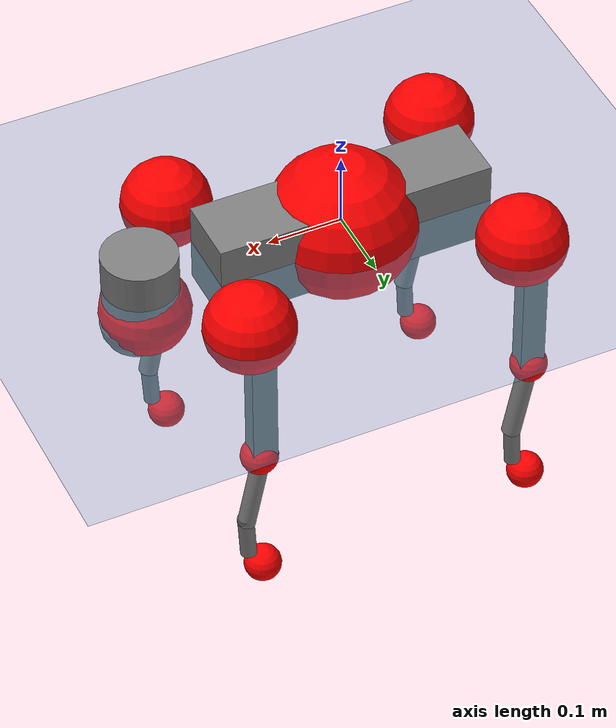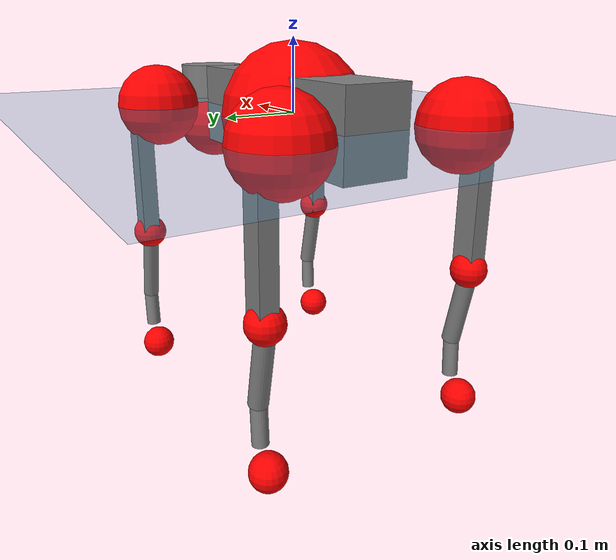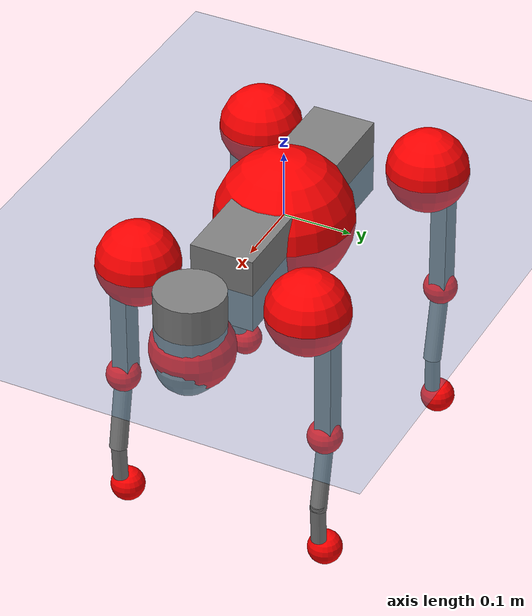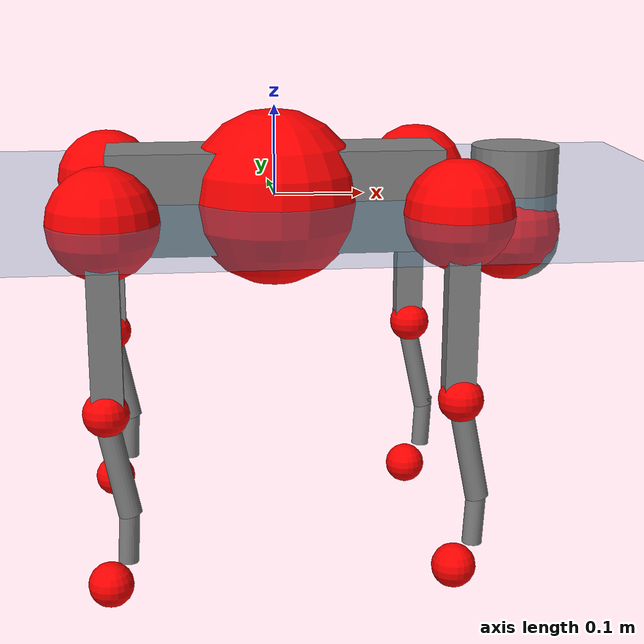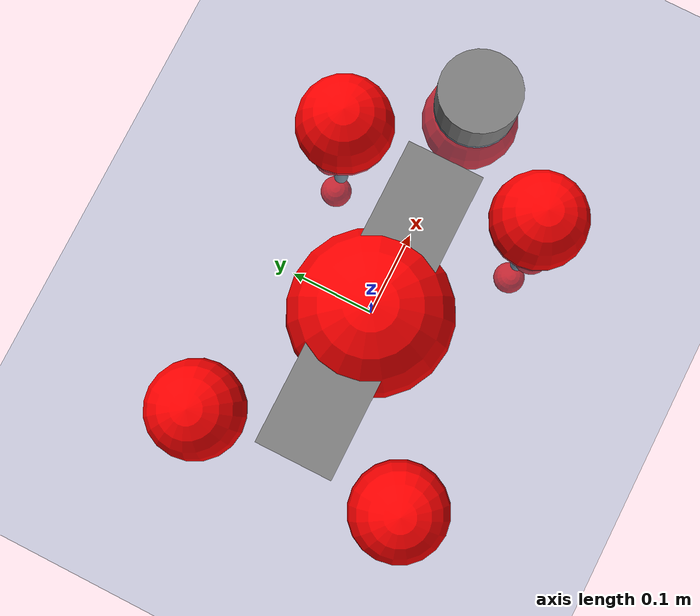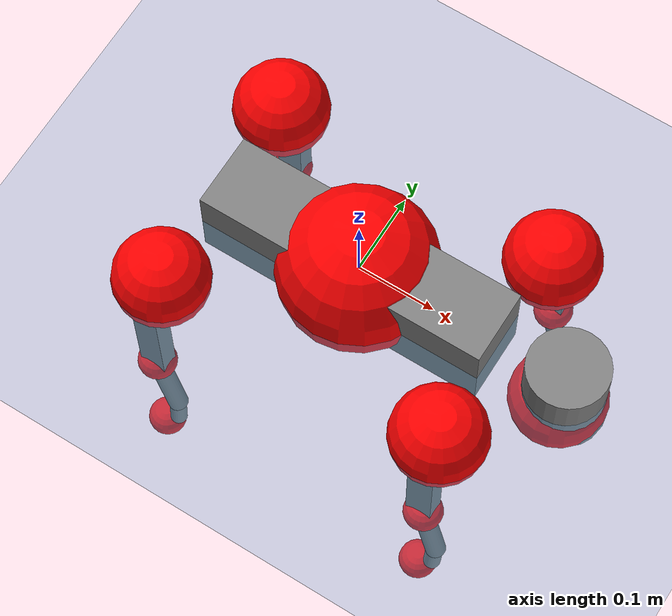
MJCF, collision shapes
<mujoco model="go2">
  <compiler angle="radian" assetdir="assets" balanceinertia="true" inertiafromgeom="false"/>

  <option timestep="0.005" density="1.2" viscosity="2e-05"/>

  <size nkey="1"/>

  <visual>
    <quality shadowsize="8192"/>
    <map shadowclip="0.5"/>
  </visual>

  <default>
    <default class="/">
      <geom contype="0" conaffinity="0" group="1" solref="-1000 -80"/>
      <site size="0.01 0.005 0.005" group="5"/>
      <general forcelimited="true" biastype="affine" gainprm="20" biasprm="0 -20 -0.5"/>
      <default class="go2">
        <joint armature="0.01" damping="0.01" frictionloss="0.2"/>
        <geom condim="1" margin="0.001"/>
        <default class="visual">
          <geom type="mesh" group="2"/>
        </default>
        <default class="collision">
          <geom group="3"/>
          <default class="foot">
            <geom size="0.022 0 0" condim="6" priority="1" friction="0.8 0.02 0.01" solimp="0.015 1 0.022"/>
          </default>
        </default>
        <default class="reward_collision_sphere">
          <geom group="5" rgba="1 0 0 1"/>
        </default>
      </default>
    </default>
  </default>

  <asset>
    <texture type="skybox" colorspace="auto" name="//unnamed_texture_0" builtin="gradient" rgb1="0.95 0.95 0.95" rgb2="0.95 0.95 0.95" width="100" height="600"/>
    <texture type="2d" colorspace="auto" name="texplane" builtin="checker" rgb1="0.345 0.575 0.748" rgb2="0.345 0.575 0.748" markrgb="1 1 1" width="512" height="512"/>
    <material name="MatPlane" class="/" texture="texplane" texuniform="true" texrepeat="2 2" specular="0.9"/>
    <material name="metal" class="/" rgba="0.9 0.95 0.95 1"/>
    <material name="black" class="/" rgba="0 0 0 1"/>
    <material name="white" class="/"/>
    <material name="gray" class="/" rgba="0.671705 0.692426 0.77427 1"/>
    <mesh name="base_0" class="/" file="base_0.obj"/>
    <mesh name="base_1" class="/" file="base_1.obj"/>
    <mesh name="base_2" class="/" file="base_2.obj"/>
    <mesh name="base_3" class="/" file="base_3.obj"/>
    <mesh name="base_4" class="/" file="base_4.obj"/>
    <mesh name="hip_0" class="/" file="hip_0.obj"/>
    <mesh name="hip_1" class="/" file="hip_1.obj"/>
    <mesh name="thigh_0" class="/" file="thigh_0.obj"/>
    <mesh name="thigh_1" class="/" file="thigh_1.obj"/>
    <mesh name="thigh_mirror_0" class="/" file="thigh_mirror_0.obj"/>
    <mesh name="thigh_mirror_1" class="/" file="thigh_mirror_1.obj"/>
    <mesh name="calf_0" class="/" file="calf_0.obj"/>
    <mesh name="calf_1" class="/" file="calf_1.obj"/>
    <mesh name="calf_mirror_0" class="/" file="calf_mirror_0.obj"/>
    <mesh name="calf_mirror_1" class="/" file="calf_mirror_1.obj"/>
    <mesh name="foot" class="/" file="foot.obj"/>
  </asset>

  <worldbody>
    <geom name="floor" class="/" size="100 100 0.125" type="plane" group="0" material="MatPlane"/>
    <light name="toplight_shadow" class="/" pos="0 0 5" dir="0.0990148 0.0990148 -0.990148" type="directional" ambient="0.04 0.04 0.04" diffuse="0.55 0.55 0.55" specular="0.12 0.12 0.12"/>
    <light name="toplight_fill" class="/" pos="0 0 5" dir="0.0990148 0.0990148 -0.990148" type="directional" castshadow="false" ambient="0.04 0.04 0.04" diffuse="0.3 0.3 0.3" specular="0.08 0.08 0.08"/>
    <body name="trunk" childclass="go2" pos="-0.000549674 0.000285253 -0.00243264" quat="1 2.38259e-06 0.000244282 0.000323194">
      <inertial pos="0.0174256 -0.00295594 -0.00411153" quat="-0.00021961 0.713383 -0.00169564 0.700772" mass="6.69992" diaginertia="0.0925233 0.154069 0.0162981"/>
      <joint name="//unnamed_joint_0" type="free" armature="0" damping="0" frictionloss="0"/>
      <geom name="//unnamed_geom_1" class="visual" material="black" mesh="base_0"/>
      <geom name="//unnamed_geom_2" class="visual" material="black" mesh="base_1"/>
      <geom name="//unnamed_geom_3" class="visual" material="black" mesh="base_2"/>
      <geom name="//unnamed_geom_4" class="visual" material="white" mesh="base_3"/>
      <geom name="//unnamed_geom_5" class="visual" material="gray" mesh="base_4"/>
      <geom name="trunk_1" class="collision" size="0.18577 0.0461709 0.0562939" type="box"/>
      <geom name="trunk_2" class="collision" size="0.0493806 0.0444425" pos="0.274266 0 0.00913988" type="cylinder"/>
      <geom name="trunk_3" class="collision" size="0.0464178" pos="0.281965 0 -0.0548393"/>
      <geom name="//unnamed_geom_9" class="reward_collision_sphere" size="0.0987612"/>
      <geom name="//unnamed_geom_10" class="reward_collision_sphere" size="0.0592567" pos="0.269454 0 -0.0411295"/>
      <site name="imu" pos="-0.0367824 0.0050403 0.0525722" size="0.00987612"/>
      <camera name="track" pos="0 -2.17302 0" quat="0.707107 0.707107 0 0" mode="trackcom"/>
      <camera name="ego_camera" pos="0.300249 0 0.0411295" quat="-0.5 -0.5 0.5 0.5"/>
      <body name="FL_hip" pos="0.184307 0.0508897 0.0019434" quat="1 -4.34179e-06 -0.00045952 0.000158617">
        <inertial pos="-0.00242012 0.00123841 0.000167942" quat="0.491135 0.505128 0.501872 0.501754" mass="0.62819" diaginertia="0.000702229 0.000893729 0.000304394"/>
        <joint name="FL_hip_joint" pos="0 0 0" axis="0.999896 -0.00490744 -0.013564" stiffness="0.00667251" range="-1.04001 1.08408" armature="0.0111632" damping="0.00556233" frictionloss="0.208179"/>
        <geom name="//unnamed_geom_11" class="visual" material="metal" mesh="hip_0"/>
        <geom name="//unnamed_geom_12" class="visual" material="gray" mesh="hip_1"/>
        <geom name="//unnamed_geom_13" class="collision" size="0.0454302 0.0197522" pos="0 0.0869209 0" quat="0.707107 0.707107 0 0" type="cylinder"/>
        <geom name="//unnamed_geom_14" class="reward_collision_sphere" size="0.0592567" pos="0 0.0760558 0"/>
        <body name="FL_thigh" pos="-0.000187354 0.105551 0.00128311" quat="1 0.000837484 0.000347117 0.000180243">
          <inertial pos="-0.00298969 -0.0238949 -0.0270819" quat="0.829472 0.0837072 -0.0225458 0.55178" mass="1.1357" diaginertia="0.00473298 0.00882459 0.000566885"/>
          <joint name="FL_thigh_joint" pos="0 0 0" axis="-0.000663419 0.999998 0.00187429" range="-1.55503 3.47349" armature="0.00938096" damping="0.0108651" frictionloss="0.170119"/>
          <geom name="//unnamed_geom_15" class="visual" material="metal" mesh="thigh_0"/>
          <geom name="//unnamed_geom_16" class="visual" material="gray" mesh="thigh_1"/>
          <geom name="//unnamed_geom_17" class="collision" size="0.105181 0.0120982 0.0167894" pos="0 0 -0.0973397" quat="0.707107 0 0.707107 0" type="box"/>
          <body name="FL_calf" pos="0.00246205 -0.00253244 -0.197501" quat="0.999999 1.141e-05 -0.00012867 0.00144576">
            <inertial pos="0.00689461 -0.000698539 -0.128102" quat="0.712698 0.000226385 -0.00585036 0.701447" mass="0.226915" diaginertia="0.00120225 0.00220325 3.35916e-05"/>
            <joint name="FL_calf_joint" pos="0 0 0" axis="-0.0069819 0.999969 -0.00371376" stiffness="0.00141567" range="-2.77083 -0.82744" armature="0.0105879" damping="0" frictionloss="0.218962"/>
            <geom name="//unnamed_geom_18" class="visual" material="gray" mesh="calf_0"/>
            <geom name="//unnamed_geom_19" class="visual" material="black" mesh="calf_1"/>
            <geom name="FL_calf0" class="collision" size="0.0118513 0.0592567" pos="0.0076987 0 -0.0548393" quat="0.994493 0 -0.104807 0" type="cylinder"/>
            <geom name="//unnamed_geom_21" class="collision" size="0.0108637 0.0320974" pos="0.0192467 0 -0.13527" quat="0.999688 0 0.0249974 0" type="cylinder"/>
            <geom name="//unnamed_geom_22" class="visual" pos="0 0 -0.194679" quat="1 0 0 0" material="black" mesh="foot"/>
            <geom name="FL_foot" class="foot" size="0.017018" pos="-0.00192467 0 -0.194679"/>
            <geom name="//unnamed_geom_24" class="reward_collision_sphere" size="0.0246903"/>
            <geom name="//unnamed_geom_25" class="reward_collision_sphere" size="0.0246903" pos="-0.00192467 0 -0.194679"/>
            <site name="FL_foot" class="foot" pos="-0.00192467 0 -0.194679" size="0.00987612"/>
          </body>
        </body>
      </body>
      <body name="FR_hip" pos="0.184516 -0.0501052 0.000858151" quat="1 -3.37665e-05 1.89339e-05 4.47642e-06">
        <inertial pos="-0.00229137 -0.00139633 -0.00074838" quat="0.497364 0.507343 0.499557 0.495656" mass="0.676498" diaginertia="0.000740424 0.000946804 0.000314627"/>
        <joint name="FR_hip_joint" pos="0 0 0" axis="0.999999 -0.00149386 0.000630487" stiffness="0.00488525" range="-1.10522 1.02997" armature="0.00853162" damping="0.012733" frictionloss="0.170212"/>
        <geom name="//unnamed_geom_26" class="visual" pos="0 1.50295e-09 6.44645e-08" quat="4.63268e-05 1 0 0" material="metal" mesh="hip_0"/>
        <geom name="//unnamed_geom_27" class="visual" pos="0 2.43646e-09 -1.59445e-07" quat="4.63268e-05 1 0 0" material="gray" mesh="hip_1"/>
        <geom name="//unnamed_geom_28" class="collision" size="0.0454302 0.0197522" pos="0 -0.0869209 0" quat="0.707107 0.707107 0 0" type="cylinder"/>
        <geom name="//unnamed_geom_29" class="reward_collision_sphere" size="0.0592567" pos="0 -0.0760558 0"/>
        <body name="FR_thigh" pos="-0.000545474 -0.100841 -0.00149525" quat="1 0.000277832 0.000265066 -0.000248597">
          <inertial pos="-0.00383988 0.0233735 -0.0291763" quat="0.55661 -0.0138748 0.0953295 0.82517" mass="1.03711" diaginertia="0.00471202 0.00878216 0.000549318"/>
          <joint name="FR_thigh_joint" pos="0 0 0" axis="-0.00916705 -0.999928 -0.00773164" range="-3.44155 1.61574" armature="0.00990285" damping="0" frictionloss="0.21849"/>
          <geom name="//unnamed_geom_30" class="visual" material="metal" mesh="thigh_mirror_0"/>
          <geom name="//unnamed_geom_31" class="visual" material="gray" mesh="thigh_mirror_1"/>
          <geom name="//unnamed_geom_32" class="collision" size="0.105181 0.0120982 0.0167894" pos="0 0 -0.0973397" quat="0.707107 0 0.707107 0" type="box"/>
          <body name="FR_calf" pos="0.00252664 -0.00260446 -0.193968" quat="1 -3.69881e-07 1.66527e-07 -2.48902e-07">
            <inertial pos="0.00595846 0.000602143 -0.12667" quat="0.702666 -0.0114543 0.00759804 0.711387" mass="0.23569" diaginertia="0.0011919 0.00214157 3.39231e-05"/>
            <joint name="FR_calf_joint" pos="0 0 0" axis="0.00688152 -0.999976 0.000884995" range="0.798388 2.76773" armature="0.0099765" damping="0.0043922" frictionloss="0.172141"/>
            <geom name="//unnamed_geom_33" class="visual" material="gray" mesh="calf_mirror_0"/>
            <geom name="//unnamed_geom_34" class="visual" material="black" mesh="calf_mirror_1"/>
            <geom name="FR_calf0" class="collision" size="0.012839 0.0592567" pos="0.00962337 0 -0.0548393" quat="0.995004 0 -0.0998334 0" type="cylinder"/>
            <geom name="//unnamed_geom_36" class="collision" size="0.0108637 0.0320974" pos="0.0192467 0 -0.13527" quat="0.999688 0 0.0249974 0" type="cylinder"/>
            <geom name="//unnamed_geom_37" class="visual" pos="0 0 -0.194679" quat="1 0 0 0" material="black" mesh="foot"/>
            <geom name="FR_foot" class="foot" size="0.0209073" pos="-0.00192467 0 -0.194679"/>
            <geom name="//unnamed_geom_39" class="reward_collision_sphere" size="0.0246903"/>
            <geom name="//unnamed_geom_40" class="reward_collision_sphere" size="0.0246903" pos="-0.00192467 0 -0.194679"/>
            <site name="FR_foot" class="foot" pos="-0.00192467 0 -0.194679" size="0.00987612"/>
          </body>
        </body>
      </body>
      <body name="RL_hip" pos="-0.188535 0.0519477 0.000485458" quat="1 -9.41587e-05 -0.000115576 -0.000108587">
        <inertial pos="0.00604159 0.00516265 -0.000355419" quat="0.512465 0.494616 0.499367 0.493323" mass="0.651025" diaginertia="0.000703739 0.000898849 0.000285225"/>
        <joint name="RL_hip_joint" pos="0 0 0" axis="-0.999982 -0.00589966 -0.00141626" stiffness="0.000374382" range="-1.0437 1.00374" armature="0.00837566" damping="0" frictionloss="0.194612"/>
        <geom name="//unnamed_geom_41" class="visual" pos="-4.21196e-10 0 -8.25641e-08" quat="4.63268e-05 0 1 0" material="metal" mesh="hip_0"/>
        <geom name="//unnamed_geom_42" class="visual" pos="-6.82809e-10 0 -7.32226e-08" quat="4.63268e-05 0 1 0" material="gray" mesh="hip_1"/>
        <geom name="//unnamed_geom_43" class="collision" size="0.0454302 0.0197522" pos="0 0.0869209 0" quat="0.707107 0.707107 0 0" type="cylinder"/>
        <geom name="//unnamed_geom_44" class="reward_collision_sphere" size="0.0592567" pos="0 0.0760558 0"/>
        <body name="RL_thigh" pos="-0.00211768 0.10087 6.34098e-05" quat="1 3.76196e-05 -8.24887e-06 -3.31758e-05">
          <inertial pos="-0.00358419 -0.0212024 -0.0289795" quat="0.828666 0.0842242 -0.0190482 0.553042" mass="1.10877" diaginertia="0.00488812 0.00860603 0.000557049"/>
          <joint name="RL_thigh_joint" pos="0 0 0" axis="-0.00670125 0.999954 0.00686026" stiffness="0.0131721" range="-0.514273 4.55865" armature="0.00919623" damping="0" frictionloss="0.199111"/>
          <geom name="//unnamed_geom_45" class="visual" material="metal" mesh="thigh_0"/>
          <geom name="//unnamed_geom_46" class="visual" material="gray" mesh="thigh_1"/>
          <geom name="//unnamed_geom_47" class="collision" size="0.105181 0.0120982 0.0167894" pos="0 0 -0.0973397" quat="0.707107 0 0.707107 0" type="box"/>
          <body name="RL_calf" pos="-0.00187124 -0.00201253 -0.195326" quat="1 -1.16085e-05 7.79943e-05 0.000102453">
            <inertial pos="0.00619444 -0.00040357 -0.129162" quat="0.712668 0.00178028 0.00596692 0.701473" mass="0.23281" diaginertia="0.00122774 0.002192 3.28877e-05"/>
            <joint name="RL_calf_joint" pos="0 0 0" axis="-0.000199464 1 -0.000212776" range="-2.71462 -0.833105" armature="0.00866218" damping="0.00481687" frictionloss="0.220102"/>
            <geom name="//unnamed_geom_48" class="visual" material="gray" mesh="calf_0"/>
            <geom name="//unnamed_geom_49" class="visual" material="black" mesh="calf_1"/>
            <geom name="RL_calf0" class="collision" size="0.012839 0.0592567" pos="0.00962337 0 -0.0548393" quat="0.995004 0 -0.0998334 0" type="cylinder"/>
            <geom name="//unnamed_geom_51" class="collision" size="0.0108637 0.0320974" pos="0.0192467 0 -0.13527" quat="0.999688 0 0.0249974 0" type="cylinder"/>
            <geom name="//unnamed_geom_52" class="visual" pos="0 0 -0.194679" quat="1 0 0 0" material="black" mesh="foot"/>
            <geom name="RL_foot" class="foot" size="0.0187951" pos="-0.00192467 0 -0.194679"/>
            <geom name="//unnamed_geom_54" class="reward_collision_sphere" size="0.0246903"/>
            <geom name="//unnamed_geom_55" class="reward_collision_sphere" size="0.0246903" pos="-0.00192467 0 -0.194679"/>
            <site name="RL_foot" class="foot" pos="-0.00192467 0 -0.194679" size="0.00987612"/>
          </body>
        </body>
      </body>
      <body name="RR_hip" pos="-0.186823 -0.0539828 -0.000980603" quat="0.999999 -0.00129847 -0.000203503 -0.000276105">
        <inertial pos="0.00245734 -0.00260462 0.00267977" quat="0.50151 0.495374 0.497726 0.505333" mass="0.642129" diaginertia="0.000718127 0.000887337 0.000291316"/>
        <joint name="RR_hip_joint" pos="0 0 0" axis="-0.999999 -0.000582108 0.00102542" range="-1.10064 1.09546" armature="0.00989655" damping="0" frictionloss="0.19531"/>
        <geom name="//unnamed_geom_56" class="visual" pos="4.25495e-10 1.50295e-09 -1.47029e-07" quat="2.14617e-09 4.63268e-05 4.63268e-05 -1" material="metal" mesh="hip_0"/>
        <geom name="//unnamed_geom_57" class="visual" pos="6.72176e-10 2.43646e-09 8.62227e-08" quat="2.14617e-09 4.63268e-05 4.63268e-05 -1" material="gray" mesh="hip_1"/>
        <geom name="//unnamed_geom_58" class="collision" size="0.0454302 0.0197522" pos="0 -0.0869209 0" quat="0.707107 0.707107 0 0" type="cylinder"/>
        <geom name="//unnamed_geom_59" class="reward_collision_sphere" size="0.0592567" pos="0 -0.0760558 0"/>
        <body name="RR_thigh" pos="-0.00110338 -0.105655 0.00178988" quat="1 5.23644e-05 7.35078e-05 -3.97778e-05">
          <inertial pos="-0.00100516 0.0252217 -0.0310256" quat="0.551921 -0.0203319 0.0846155 0.829343" mass="1.04385" diaginertia="0.00460517 0.00863515 0.000538173"/>
          <joint name="RR_thigh_joint" pos="0 0 0" axis="0.0129799 -0.999815 0.0141719" range="-4.53455 0.518405" armature="0.00958952" damping="0.0123879" frictionloss="0.197541"/>
          <geom name="//unnamed_geom_60" class="visual" material="metal" mesh="thigh_mirror_0"/>
          <geom name="//unnamed_geom_61" class="visual" material="gray" mesh="thigh_mirror_1"/>
          <geom name="//unnamed_geom_62" class="collision" size="0.105181 0.0120982 0.0167894" pos="0 0 -0.0973397" quat="0.707107 0 0.707107 0" type="box"/>
          <body name="RR_calf" pos="-0.00229134 0.000248281 -0.195871" quat="1 -0.000304383 8.07559e-05 0.000484961">
            <inertial pos="0.00530994 0.000663227 -0.129196" quat="0.699592 0.0078006 -0.00184591 0.714498" mass="0.228883" diaginertia="0.00119734 0.00228183 3.38683e-05"/>
            <joint name="RR_calf_joint" pos="0 0 0" axis="-0.000857767 -0.999999 0.00059964" stiffness="0.0112463" range="0.855407 2.73242" armature="0.0085992" damping="0.0128712" frictionloss="0.197907"/>
            <geom name="//unnamed_geom_63" class="visual" material="gray" mesh="calf_mirror_0"/>
            <geom name="//unnamed_geom_64" class="visual" material="black" mesh="calf_mirror_1"/>
            <geom name="RR_calf0" class="collision" size="0.012839 0.0592567" pos="0.00962337 0 -0.0548393" quat="0.995004 0 -0.0998334 0" type="cylinder"/>
            <geom name="//unnamed_geom_66" class="collision" size="0.0108637 0.0320974" pos="0.0192467 0 -0.13527" quat="0.999688 0 0.0249974 0" type="cylinder"/>
            <geom name="//unnamed_geom_67" class="visual" pos="0 0 -0.194679" quat="1 0 0 0" material="black" mesh="foot"/>
            <geom name="RR_foot" class="foot" size="0.0201055" pos="-0.00192467 0 -0.194679"/>
            <geom name="//unnamed_geom_69" class="reward_collision_sphere" size="0.0246903"/>
            <geom name="//unnamed_geom_70" class="reward_collision_sphere" size="0.0246903" pos="-0.00192467 0 -0.194679"/>
            <site name="RR_foot" class="foot" pos="-0.00192467 0 -0.194679" size="0.00987612"/>
          </body>
        </body>
      </body>
    </body>
  </worldbody>

  <contact>
    <pair class="/" geom1="floor" geom2="FL_foot" name="//unnamed_contact_0"/>
    <pair class="/" geom1="floor" geom2="FR_foot" name="//unnamed_contact_1"/>
    <pair class="/" geom1="floor" geom2="RL_foot" name="//unnamed_contact_2"/>
    <pair class="/" geom1="floor" geom2="RR_foot" name="//unnamed_contact_3"/>
  </contact>

  <actuator>
    <general name="FL_hip" class="/" joint="FL_hip_joint" forcerange="-24.32 24.32" gainprm="19.3826" biasprm="0 -19.3826 -0.500041"/>
    <general name="FL_thigh" class="/" joint="FL_thigh_joint" forcerange="-21.7694 21.7694" gainprm="19.3826" biasprm="0 -19.3826 -0.500041"/>
    <general name="FL_calf" class="/" joint="FL_calf_joint" forcerange="-45.9553 45.9553" gainprm="19.3826" biasprm="0 -19.3826 -0.500041"/>
    <general name="FR_hip" class="/" joint="FR_hip_joint" forcerange="-21.5283 21.5283" gainprm="19.3826" biasprm="0 -19.3826 -0.500041"/>
    <general name="FR_thigh" class="/" joint="FR_thigh_joint" forcerange="-24.3272 24.3272" gainprm="19.3826" biasprm="0 -19.3826 -0.500041"/>
    <general name="FR_calf" class="/" joint="FR_calf_joint" forcerange="-39.9113 39.9113" gainprm="19.3826" biasprm="0 -19.3826 -0.500041"/>
    <general name="RL_hip" class="/" joint="RL_hip_joint" forcerange="-23.4645 23.4645" gainprm="19.3826" biasprm="0 -19.3826 -0.500041"/>
    <general name="RL_thigh" class="/" joint="RL_thigh_joint" forcerange="-21.0345 21.0345" gainprm="19.3826" biasprm="0 -19.3826 -0.500041"/>
    <general name="RL_calf" class="/" joint="RL_calf_joint" forcerange="-46.2904 46.2904" gainprm="19.3826" biasprm="0 -19.3826 -0.500041"/>
    <general name="RR_hip" class="/" joint="RR_hip_joint" forcerange="-23.361 23.361" gainprm="19.3826" biasprm="0 -19.3826 -0.500041"/>
    <general name="RR_thigh" class="/" joint="RR_thigh_joint" forcerange="-21.1063 21.1063" gainprm="19.3826" biasprm="0 -19.3826 -0.500041"/>
    <general name="RR_calf" class="/" joint="RR_calf_joint" forcerange="-49.6064 49.6064" gainprm="19.3826" biasprm="0 -19.3826 -0.500041"/>
  </actuator>

  <sensor>
    <gyro site="imu" name="imu_angular_velocity"/>
    <velocimeter site="imu" name="imu_linear_velocity"/>
    <framelinvel objtype="site" objname="FL_foot" name="FL_foot_global_linear_velocity"/>
    <framelinvel objtype="site" objname="FR_foot" name="FR_foot_global_linear_velocity"/>
    <framelinvel objtype="site" objname="RL_foot" name="RL_foot_global_linear_velocity"/>
    <framelinvel objtype="site" objname="RR_foot" name="RR_foot_global_linear_velocity"/>
  </sensor>

  <keyframe>
    <key name="home" qpos="0 0 0.325 1 0 0 0 0.1 0.8 -1.5 -0.1 -0.8 1.5 -0.1 0.8 -1.5 0.1 -0.8 1.5"/>
  </keyframe>
</mujoco>
